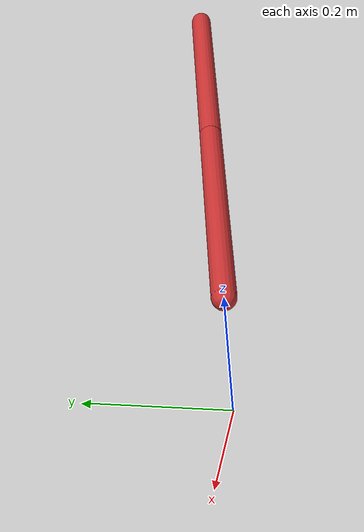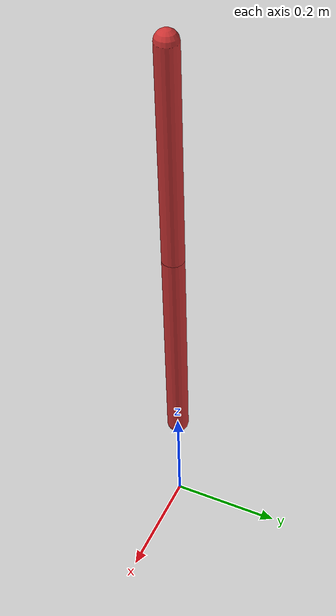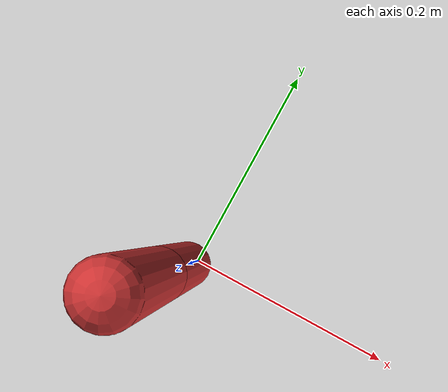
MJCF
<mujoco>
  <compiler angle="radian"/>

  <default>
    <joint type="hinge" axis="0 1 0" damping="0.1"/>
    <geom type="capsule" size="0.02" rgba="0.8 0.2 0.2 1"/>
  </default>

  <worldbody>
    <light pos="0 -1 2"/>
    <body pos="0 0 1">
      <joint name="hinge1"/>
      <geom fromto="0 0 0 0 0 -0.4"/>
      <body pos="0 0 -0.4">
        <joint name="hinge2"/>
        <geom fromto="0 0 0 0 0 -0.4"/>
      </body>
    </body>
  </worldbody>
</mujoco>
